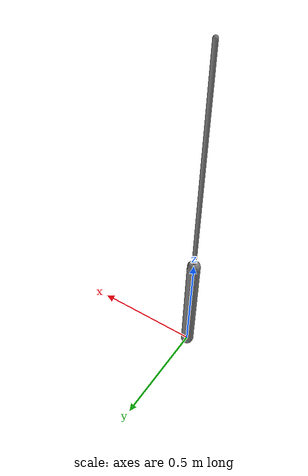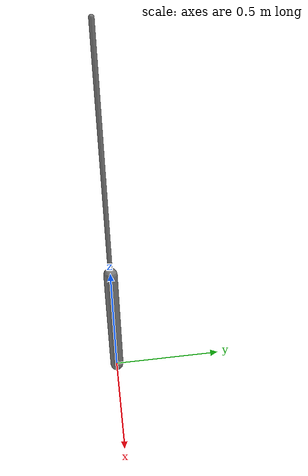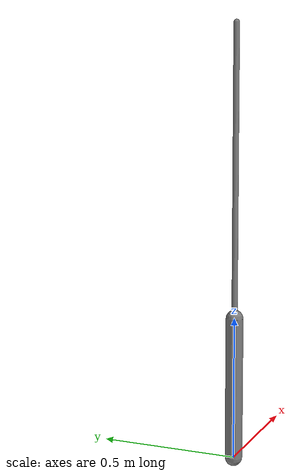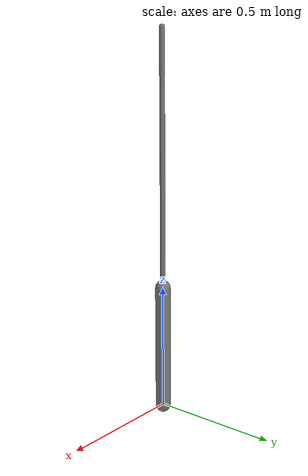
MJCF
<mujoco>
    <option>
        <flag gravity = "disable"/>
    </option>
    <worldbody>
        <body name = "link_1">
            <joint type = "hinge" axis = "0 1 0" name = "ground_joint"/>
            <geom type = "capsule" fromto = "0 0 0 0 0 0.5" name = "leg" size = ".03" mass = "1"/>
            <body name = "stick_2" pos = "0 0 .5">
                <joint type = "hinge" axis = "0 1 0" name = "middle_joint" pos = "0 0 0"/>
                <geom type = "capsule" size = ".01" fromto = "0 0 0 0 0 1"  mass = "5"/>
                <site name = "stick_end" pos = "0 0 1"/>
            </body>

        </body>
    </worldbody>
</mujoco>
